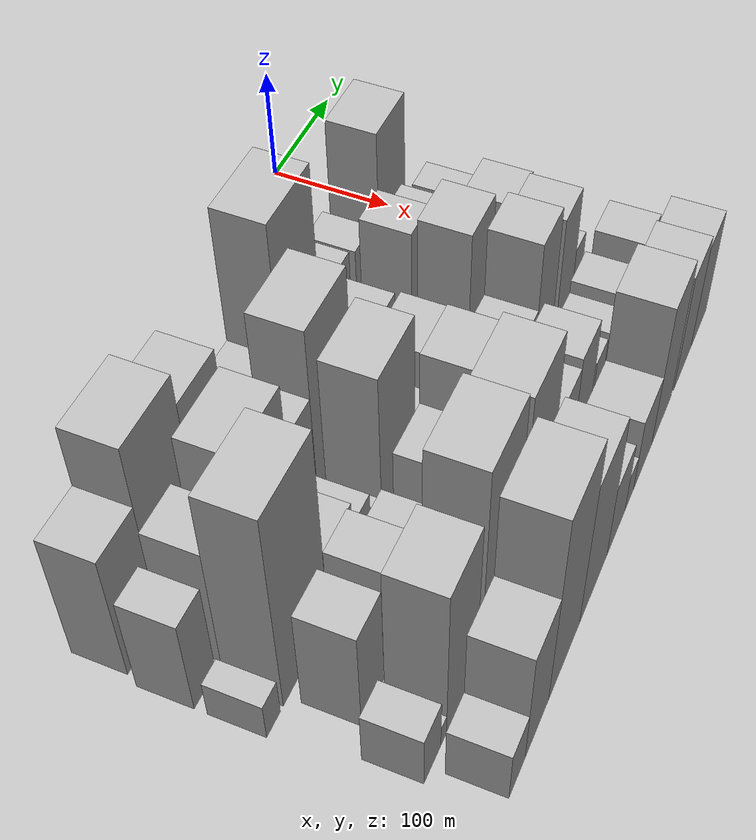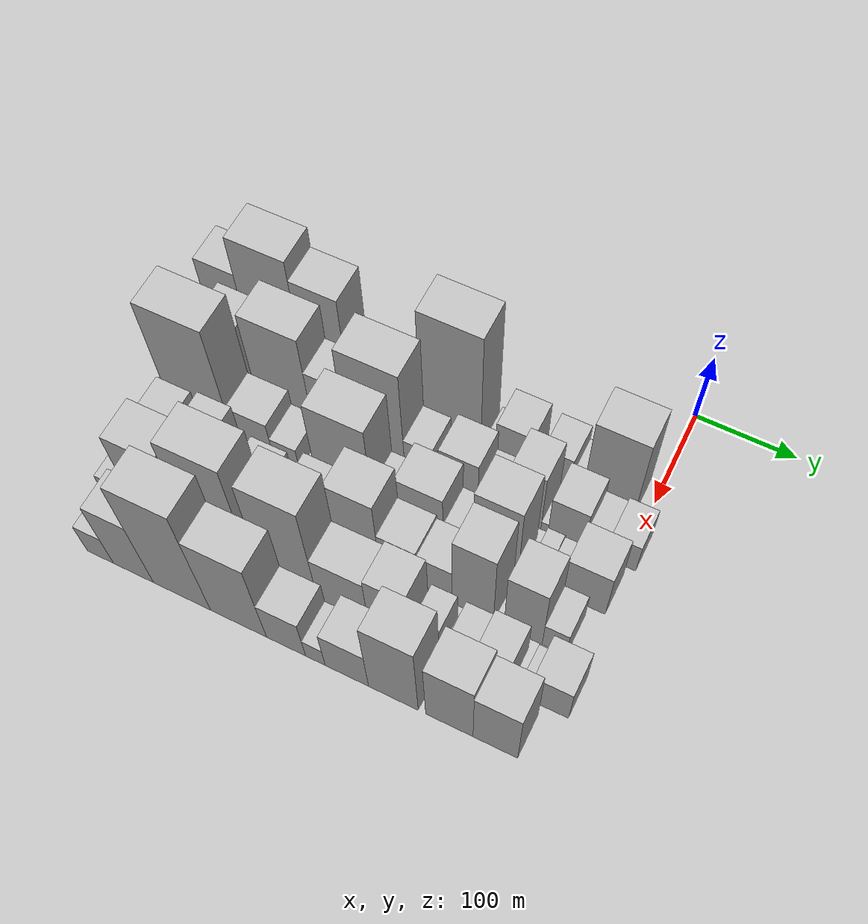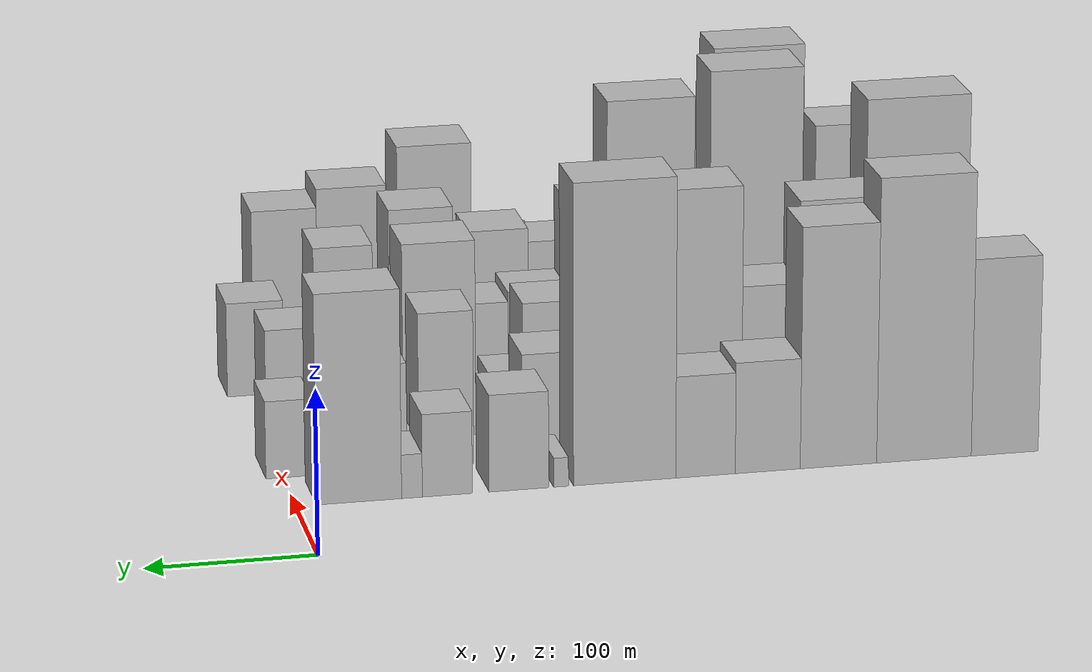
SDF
<sdf version="1.6">
 <world name="default">
  <model name="building_13">
   <static>1</static>
   <pose>100.0000 -427.4306 0 0.000000 0.000000 0.000000</pose>
   <link name="link">
    <pose>0 0 61.50 0 0 0</pose>
    <collision name="collision"><geometry><box><size>40.0000 41.3613 123.0000</size></box></geometry></collision>
    <visual name="visual">
     <cast_shadows>0</cast_shadows>
     <geometry><box><size>40.0000 41.3613 123.0000</size></box></geometry>
     <material>
      <script>
       <uri>model://HANNAS_wall/materials/scripts</uri>
       <uri>model://HANNAS_wall/materials/textures</uri>
       <name>vrc/HANNAS_wall</name>
      </script>
     </material>
    </visual>
   </link>
  </model>
  <model name="building_14">
   <static>1</static>
   <pose>100.0000 -377.6617 0 0.000000 0.000000 0.000000</pose>
   <link name="link">
    <pose>0 0 88.50 0 0 0</pose>
    <collision name="collision"><geometry><box><size>40.0000 58.1763 177.0000</size></box></geometry></collision>
    <visual name="visual">
     <cast_shadows>0</cast_shadows>
     <geometry><box><size>40.0000 58.1763 177.0000</size></box></geometry>
     <material>
      <script>
       <uri>model://HANNAS_wall/materials/scripts</uri>
       <uri>model://HANNAS_wall/materials/textures</uri>
       <name>vrc/HANNAS_wall</name>
      </script>
     </material>
    </visual>
   </link>
  </model>
  <model name="building_15">
   <static>1</static>
   <pose>100.0000 -325.2253 0 0.000000 0.000000 0.000000</pose>
   <link name="link">
    <pose>0 0 75.00 0 0 0</pose>
    <collision name="collision"><geometry><box><size>40.0000 46.6966 150.0000</size></box></geometry></collision>
    <visual name="visual">
     <cast_shadows>0</cast_shadows>
     <geometry><box><size>40.0000 46.6966 150.0000</size></box></geometry>
     <material>
      <script>
       <uri>model://HANNAS_wall/materials/scripts</uri>
       <uri>model://HANNAS_wall/materials/textures</uri>
       <name>vrc/HANNAS_wall</name>
      </script>
     </material>
    </visual>
   </link>
  </model>
  <model name="building_16">
   <static>1</static>
   <pose>100.0000 -282.1139 0 0.000000 0.000000 0.000000</pose>
   <link name="link">
    <pose>0 0 34.50 0 0 0</pose>
    <collision name="collision"><geometry><box><size>40.0000 39.5261 69.0000</size></box></geometry></collision>
    <visual name="visual">
     <cast_shadows>0</cast_shadows>
     <geometry><box><size>40.0000 39.5261 69.0000</size></box></geometry>
     <material>
      <script>
       <uri>model://HANNAS_wall/materials/scripts</uri>
       <uri>model://HANNAS_wall/materials/textures</uri>
       <name>vrc/HANNAS_wall</name>
      </script>
     </material>
    </visual>
   </link>
  </model>
  <model name="building_17">
   <static>1</static>
   <pose>100.0000 -244.3555 0 0.000000 0.000000 0.000000</pose>
   <link name="link">
    <pose>0 0 31.50 0 0 0</pose>
    <collision name="collision"><geometry><box><size>40.0000 35.9908 63.0000</size></box></geometry></collision>
    <visual name="visual">
     <cast_shadows>0</cast_shadows>
     <geometry><box><size>40.0000 35.9908 63.0000</size></box></geometry>
     <material>
      <script>
       <uri>model://HANNAS_wall/materials/scripts</uri>
       <uri>model://HANNAS_wall/materials/textures</uri>
       <name>vrc/HANNAS_wall</name>
      </script>
     </material>
    </visual>
   </link>
  </model>
  <model name="building_18">
   <static>1</static>
   <pose>100.0000 -195.5753 0 0.000000 0.000000 0.000000</pose>
   <link name="link">
    <pose>0 0 93.00 0 0 0</pose>
    <collision name="collision"><geometry><box><size>40.0000 61.5694 186.0000</size></box></geometry></collision>
    <visual name="visual">
     <cast_shadows>0</cast_shadows>
     <geometry><box><size>40.0000 61.5694 186.0000</size></box></geometry>
     <material>
      <script>
       <uri>model://HANNAS_wall/materials/scripts</uri>
       <uri>model://HANNAS_wall/materials/textures</uri>
       <name>vrc/HANNAS_wall</name>
      </script>
     </material>
    </visual>
   </link>
  </model>
  <model name="building_19">
   <static>1</static>
   <pose>100.0000 -157.3529 0 0.000000 0.000000 0.000000</pose>
   <link name="link">
    <pose>0 0 9.00 0 0 0</pose>
    <collision name="collision"><geometry><box><size>40.0000 8.8755 18.0000</size></box></geometry></collision>
    <visual name="visual">
     <cast_shadows>0</cast_shadows>
     <geometry><box><size>40.0000 8.8755 18.0000</size></box></geometry>
     <material>
      <script>
       <uri>model://HANNAS_wall/materials/scripts</uri>
       <uri>model://HANNAS_wall/materials/textures</uri>
       <name>vrc/HANNAS_wall</name>
      </script>
     </material>
    </visual>
   </link>
  </model>
  <model name="building_20">
   <static>1</static>
   <pose>100.0000 -132.1527 0 0.000000 0.000000 0.000000</pose>
   <link name="link">
    <pose>0 0 30.00 0 0 0</pose>
    <collision name="collision"><geometry><box><size>40.0000 35.5249 60.0000</size></box></geometry></collision>
    <visual name="visual">
     <cast_shadows>0</cast_shadows>
     <geometry><box><size>40.0000 35.5249 60.0000</size></box></geometry>
     <material>
      <script>
       <uri>model://HANNAS_wall/materials/scripts</uri>
       <uri>model://HANNAS_wall/materials/textures</uri>
       <name>vrc/HANNAS_wall</name>
      </script>
     </material>
    </visual>
   </link>
  </model>
  <model name="building_21">
   <static>1</static>
   <pose>100.0000 -89.5267 0 0.000000 0.000000 0.000000</pose>
   <link name="link">
    <pose>0 0 25.50 0 0 0</pose>
    <collision name="collision"><geometry><box><size>40.0000 29.7271 51.0000</size></box></geometry></collision>
    <visual name="visual">
     <cast_shadows>0</cast_shadows>
     <geometry><box><size>40.0000 29.7271 51.0000</size></box></geometry>
     <material>
      <script>
       <uri>model://HANNAS_wall/materials/scripts</uri>
       <uri>model://HANNAS_wall/materials/textures</uri>
       <name>vrc/HANNAS_wall</name>
      </script>
     </material>
    </visual>
   </link>
  </model>
  <model name="building_22">
   <static>1</static>
   <pose>100.0000 -68.5226 0 0.000000 0.000000 0.000000</pose>
   <link name="link">
    <pose>0 0 13.50 0 0 0</pose>
    <collision name="collision"><geometry><box><size>40.0000 12.2811 27.0000</size></box></geometry></collision>
    <visual name="visual">
     <cast_shadows>0</cast_shadows>
     <geometry><box><size>40.0000 12.2811 27.0000</size></box></geometry>
     <material>
      <script>
       <uri>model://HANNAS_wall/materials/scripts</uri>
       <uri>model://HANNAS_wall/materials/textures</uri>
       <name>vrc/HANNAS_wall</name>
      </script>
     </material>
    </visual>
   </link>
  </model>
  <model name="building_23">
   <static>1</static>
   <pose>100.0000 -37.1999 0 0.000000 0.000000 0.000000</pose>
   <link name="link">
    <pose>0 0 64.50 0 0 0</pose>
    <collision name="collision"><geometry><box><size>40.0000 50.3643 129.0000</size></box></geometry></collision>
    <visual name="visual">
     <cast_shadows>0</cast_shadows>
     <geometry><box><size>40.0000 50.3643 129.0000</size></box></geometry>
     <material>
      <script>
       <uri>model://HANNAS_wall/materials/scripts</uri>
       <uri>model://HANNAS_wall/materials/textures</uri>
       <name>vrc/HANNAS_wall</name>
      </script>
     </material>
    </visual>
   </link>
  </model>
  <model name="building_62">
   <static>1</static>
   <pose>149.0000 -438.9851 0 0.000000 0.000000 0.000000</pose>
   <link name="link">
    <pose>0 0 46.50 0 0 0</pose>
    <collision name="collision"><geometry><box><size>40.0000 28.0538 93.0000</size></box></geometry></collision>
    <visual name="visual">
     <cast_shadows>0</cast_shadows>
     <geometry><box><size>40.0000 28.0538 93.0000</size></box></geometry>
     <material>
      <script>
       <uri>model://HANNAS_wall/materials/scripts</uri>
       <uri>model://HANNAS_wall/materials/textures</uri>
       <name>vrc/HANNAS_wall</name>
      </script>
     </material>
    </visual>
   </link>
  </model>
  <model name="building_63">
   <static>1</static>
   <pose>149.0000 -398.9641 0 0.000000 0.000000 0.000000</pose>
   <link name="link">
    <pose>0 0 58.50 0 0 0</pose>
    <collision name="collision"><geometry><box><size>40.0000 37.9882 117.0000</size></box></geometry></collision>
    <visual name="visual">
     <cast_shadows>0</cast_shadows>
     <geometry><box><size>40.0000 37.9882 117.0000</size></box></geometry>
     <material>
      <script>
       <uri>model://HANNAS_wall/materials/scripts</uri>
       <uri>model://HANNAS_wall/materials/textures</uri>
       <name>vrc/HANNAS_wall</name>
      </script>
     </material>
    </visual>
   </link>
  </model>
  <model name="building_64">
   <static>1</static>
   <pose>149.0000 -341.8374 0 0.000000 0.000000 0.000000</pose>
   <link name="link">
    <pose>0 0 75.00 0 0 0</pose>
    <collision name="collision"><geometry><box><size>40.0000 58.2653 150.0000</size></box></geometry></collision>
    <visual name="visual">
     <cast_shadows>0</cast_shadows>
     <geometry><box><size>40.0000 58.2653 150.0000</size></box></geometry>
     <material>
      <script>
       <uri>model://HANNAS_wall/materials/scripts</uri>
       <uri>model://HANNAS_wall/materials/textures</uri>
       <name>vrc/HANNAS_wall</name>
      </script>
     </material>
    </visual>
   </link>
  </model>
  <model name="building_65">
   <static>1</static>
   <pose>149.0000 -295.3046 0 0.000000 0.000000 0.000000</pose>
   <link name="link">
    <pose>0 0 49.50 0 0 0</pose>
    <collision name="collision"><geometry><box><size>40.0000 34.8002 99.0000</size></box></geometry></collision>
    <visual name="visual">
     <cast_shadows>0</cast_shadows>
     <geometry><box><size>40.0000 34.8002 99.0000</size></box></geometry>
     <material>
      <script>
       <uri>model://HANNAS_wall/materials/scripts</uri>
       <uri>model://HANNAS_wall/materials/textures</uri>
       <name>vrc/HANNAS_wall</name>
      </script>
     </material>
    </visual>
   </link>
  </model>
  <model name="building_66">
   <static>1</static>
   <pose>149.0000 -247.8625 0 0.000000 0.000000 0.000000</pose>
   <link name="link">
    <pose>0 0 81.00 0 0 0</pose>
    <collision name="collision"><geometry><box><size>40.0000 60.0841 162.0000</size></box></geometry></collision>
    <visual name="visual">
     <cast_shadows>0</cast_shadows>
     <geometry><box><size>40.0000 60.0841 162.0000</size></box></geometry>
     <material>
      <script>
       <uri>model://HANNAS_wall/materials/scripts</uri>
       <uri>model://HANNAS_wall/materials/textures</uri>
       <name>vrc/HANNAS_wall</name>
      </script>
     </material>
    </visual>
   </link>
  </model>
  <model name="building_67">
   <static>1</static>
   <pose>149.0000 -203.9752 0 0.000000 0.000000 0.000000</pose>
   <link name="link">
    <pose>0 0 27.00 0 0 0</pose>
    <collision name="collision"><geometry><box><size>40.0000 27.6906 54.0000</size></box></geometry></collision>
    <visual name="visual">
     <cast_shadows>0</cast_shadows>
     <geometry><box><size>40.0000 27.6906 54.0000</size></box></geometry>
     <material>
      <script>
       <uri>model://HANNAS_wall/materials/scripts</uri>
       <uri>model://HANNAS_wall/materials/textures</uri>
       <name>vrc/HANNAS_wall</name>
      </script>
     </material>
    </visual>
   </link>
  </model>
  <model name="building_68">
   <static>1</static>
   <pose>149.0000 -163.5747 0 0.000000 0.000000 0.000000</pose>
   <link name="link">
    <pose>0 0 33.00 0 0 0</pose>
    <collision name="collision"><geometry><box><size>40.0000 39.1105 66.0000</size></box></geometry></collision>
    <visual name="visual">
     <cast_shadows>0</cast_shadows>
     <geometry><box><size>40.0000 39.1105 66.0000</size></box></geometry>
     <material>
      <script>
       <uri>model://HANNAS_wall/materials/scripts</uri>
       <uri>model://HANNAS_wall/materials/textures</uri>
       <name>vrc/HANNAS_wall</name>
      </script>
     </material>
    </visual>
   </link>
  </model>
  <model name="building_69">
   <static>1</static>
   <pose>149.0000 -134.3335 0 0.000000 0.000000 0.000000</pose>
   <link name="link">
    <pose>0 0 16.50 0 0 0</pose>
    <collision name="collision"><geometry><box><size>40.0000 19.3720 33.0000</size></box></geometry></collision>
    <visual name="visual">
     <cast_shadows>0</cast_shadows>
     <geometry><box><size>40.0000 19.3720 33.0000</size></box></geometry>
     <material>
      <script>
       <uri>model://HANNAS_wall/materials/scripts</uri>
       <uri>model://HANNAS_wall/materials/textures</uri>
       <name>vrc/HANNAS_wall</name>
      </script>
     </material>
    </visual>
   </link>
  </model>
  <model name="building_70">
   <static>1</static>
   <pose>149.0000 -98.1172 0 0.000000 0.000000 0.000000</pose>
   <link name="link">
    <pose>0 0 48.00 0 0 0</pose>
    <collision name="collision"><geometry><box><size>40.0000 33.0605 96.0000</size></box></geometry></collision>
    <visual name="visual">
     <cast_shadows>0</cast_shadows>
     <geometry><box><size>40.0000 33.0605 96.0000</size></box></geometry>
     <material>
      <script>
       <uri>model://HANNAS_wall/materials/scripts</uri>
       <uri>model://HANNAS_wall/materials/textures</uri>
       <name>vrc/HANNAS_wall</name>
      </script>
     </material>
    </visual>
   </link>
  </model>
  <model name="building_71">
   <static>1</static>
   <pose>149.0000 -78.0625 0 0.000000 0.000000 0.000000</pose>
   <link name="link">
    <pose>0 0 7.50 0 0 0</pose>
    <collision name="collision"><geometry><box><size>40.0000 7.0490 15.0000</size></box></geometry></collision>
    <visual name="visual">
     <cast_shadows>0</cast_shadows>
     <geometry><box><size>40.0000 7.0490 15.0000</size></box></geometry>
     <material>
      <script>
       <uri>model://HANNAS_wall/materials/scripts</uri>
       <uri>model://HANNAS_wall/materials/textures</uri>
       <name>vrc/HANNAS_wall</name>
      </script>
     </material>
    </visual>
   </link>
  </model>
  <model name="building_72">
   <static>1</static>
   <pose>149.0000 -56.8983 0 0.000000 0.000000 0.000000</pose>
   <link name="link">
    <pose>0 0 33.00 0 0 0</pose>
    <collision name="collision"><geometry><box><size>40.0000 35.2795 66.0000</size></box></geometry></collision>
    <visual name="visual">
     <cast_shadows>0</cast_shadows>
     <geometry><box><size>40.0000 35.2795 66.0000</size></box></geometry>
     <material>
      <script>
       <uri>model://HANNAS_wall/materials/scripts</uri>
       <uri>model://HANNAS_wall/materials/textures</uri>
       <name>vrc/HANNAS_wall</name>
      </script>
     </material>
    </visual>
   </link>
  </model>
  <model name="building_73">
   <static>1</static>
   <pose>149.0000 -28.7446 0 0.000000 0.000000 0.000000</pose>
   <link name="link">
    <pose>0 0 21.00 0 0 0</pose>
    <collision name="collision"><geometry><box><size>40.0000 21.0278 42.0000</size></box></geometry></collision>
    <visual name="visual">
     <cast_shadows>0</cast_shadows>
     <geometry><box><size>40.0000 21.0278 42.0000</size></box></geometry>
     <material>
      <script>
       <uri>model://HANNAS_wall/materials/scripts</uri>
       <uri>model://HANNAS_wall/materials/textures</uri>
       <name>vrc/HANNAS_wall</name>
      </script>
     </material>
    </visual>
   </link>
  </model>
  <model name="building_74">
   <static>1</static>
   <pose>149.0000 -4.1465 0 0.000000 0.000000 0.000000</pose>
   <link name="link">
    <pose>0 0 24.00 0 0 0</pose>
    <collision name="collision"><geometry><box><size>40.0000 28.1684 48.0000</size></box></geometry></collision>
    <visual name="visual">
     <cast_shadows>0</cast_shadows>
     <geometry><box><size>40.0000 28.1684 48.0000</size></box></geometry>
     <material>
      <script>
       <uri>model://HANNAS_wall/materials/scripts</uri>
       <uri>model://HANNAS_wall/materials/textures</uri>
       <name>vrc/HANNAS_wall</name>
      </script>
     </material>
    </visual>
   </link>
  </model>
  <model name="building_108">
   <static>1</static>
   <pose>198.0000 -443.6836 0 0.000000 0.000000 0.000000</pose>
   <link name="link">
    <pose>0 0 18.00 0 0 0</pose>
    <collision name="collision"><geometry><box><size>40.0000 18.5985 36.0000</size></box></geometry></collision>
    <visual name="visual">
     <cast_shadows>0</cast_shadows>
     <geometry><box><size>40.0000 18.5985 36.0000</size></box></geometry>
     <material>
      <script>
       <uri>model://HANNAS_wall/materials/scripts</uri>
       <uri>model://HANNAS_wall/materials/textures</uri>
       <name>vrc/HANNAS_wall</name>
      </script>
     </material>
    </visual>
   </link>
  </model>
  <model name="building_109">
   <static>1</static>
   <pose>198.0000 -398.2419 0 0.000000 0.000000 0.000000</pose>
   <link name="link">
    <pose>0 0 97.50 0 0 0</pose>
    <collision name="collision"><geometry><box><size>40.0000 64.2850 195.0000</size></box></geometry></collision>
    <visual name="visual">
     <cast_shadows>0</cast_shadows>
     <geometry><box><size>40.0000 64.2850 195.0000</size></box></geometry>
     <material>
      <script>
       <uri>model://HANNAS_wall/materials/scripts</uri>
       <uri>model://HANNAS_wall/materials/textures</uri>
       <name>vrc/HANNAS_wall</name>
      </script>
     </material>
    </visual>
   </link>
  </model>
  <model name="building_110">
   <static>1</static>
   <pose>198.0000 -345.6765 0 0.000000 0.000000 0.000000</pose>
   <link name="link">
    <pose>0 0 37.50 0 0 0</pose>
    <collision name="collision"><geometry><box><size>40.0000 40.8457 75.0000</size></box></geometry></collision>
    <visual name="visual">
     <cast_shadows>0</cast_shadows>
     <geometry><box><size>40.0000 40.8457 75.0000</size></box></geometry>
     <material>
      <script>
       <uri>model://HANNAS_wall/materials/scripts</uri>
       <uri>model://HANNAS_wall/materials/textures</uri>
       <name>vrc/HANNAS_wall</name>
      </script>
     </material>
    </visual>
   </link>
  </model>
  <model name="building_111">
   <static>1</static>
   <pose>198.0000 -312.0184 0 0.000000 0.000000 0.000000</pose>
   <link name="link">
    <pose>0 0 25.50 0 0 0</pose>
    <collision name="collision"><geometry><box><size>40.0000 26.4703 51.0000</size></box></geometry></collision>
    <visual name="visual">
     <cast_shadows>0</cast_shadows>
     <geometry><box><size>40.0000 26.4703 51.0000</size></box></geometry>
     <material>
      <script>
       <uri>model://HANNAS_wall/materials/scripts</uri>
       <uri>model://HANNAS_wall/materials/textures</uri>
       <name>vrc/HANNAS_wall</name>
      </script>
     </material>
    </visual>
   </link>
  </model>
  <model name="building_112">
   <static>1</static>
   <pose>198.0000 -295.0515 0 0.000000 0.000000 0.000000</pose>
   <link name="link">
    <pose>0 0 7.50 0 0 0</pose>
    <collision name="collision"><geometry><box><size>40.0000 7.4636 15.0000</size></box></geometry></collision>
    <visual name="visual">
     <cast_shadows>0</cast_shadows>
     <geometry><box><size>40.0000 7.4636 15.0000</size></box></geometry>
     <material>
      <script>
       <uri>model://HANNAS_wall/materials/scripts</uri>
       <uri>model://HANNAS_wall/materials/textures</uri>
       <name>vrc/HANNAS_wall</name>
      </script>
     </material>
    </visual>
   </link>
  </model>
  <model name="building_113">
   <static>1</static>
   <pose>198.0000 -286.3636 0 0.000000 0.000000 0.000000</pose>
   <link name="link">
    <pose>0 0 12.00 0 0 0</pose>
    <collision name="collision"><geometry><box><size>40.0000 9.9121 24.0000</size></box></geometry></collision>
    <visual name="visual">
     <cast_shadows>0</cast_shadows>
     <geometry><box><size>40.0000 9.9121 24.0000</size></box></geometry>
     <material>
      <script>
       <uri>model://HANNAS_wall/materials/scripts</uri>
       <uri>model://HANNAS_wall/materials/textures</uri>
       <name>vrc/HANNAS_wall</name>
      </script>
     </material>
    </visual>
   </link>
  </model>
  <model name="building_114">
   <static>1</static>
   <pose>198.0000 -252.9938 0 0.000000 0.000000 0.000000</pose>
   <link name="link">
    <pose>0 0 72.00 0 0 0</pose>
    <collision name="collision"><geometry><box><size>40.0000 56.8274 144.0000</size></box></geometry></collision>
    <visual name="visual">
     <cast_shadows>0</cast_shadows>
     <geometry><box><size>40.0000 56.8274 144.0000</size></box></geometry>
     <material>
      <script>
       <uri>model://HANNAS_wall/materials/scripts</uri>
       <uri>model://HANNAS_wall/materials/textures</uri>
       <name>vrc/HANNAS_wall</name>
      </script>
     </material>
    </visual>
   </link>
  </model>
  <model name="building_115">
   <static>1</static>
   <pose>198.0000 -212.6609 0 0.000000 0.000000 0.000000</pose>
   <link name="link">
    <pose>0 0 22.50 0 0 0</pose>
    <collision name="collision"><geometry><box><size>40.0000 23.8385 45.0000</size></box></geometry></collision>
    <visual name="visual">
     <cast_shadows>0</cast_shadows>
     <geometry><box><size>40.0000 23.8385 45.0000</size></box></geometry>
     <material>
      <script>
       <uri>model://HANNAS_wall/materials/scripts</uri>
       <uri>model://HANNAS_wall/materials/textures</uri>
       <name>vrc/HANNAS_wall</name>
      </script>
     </material>
    </visual>
   </link>
  </model>
  <model name="building_116">
   <static>1</static>
   <pose>198.0000 -177.5219 0 0.000000 0.000000 0.000000</pose>
   <link name="link">
    <pose>0 0 40.50 0 0 0</pose>
    <collision name="collision"><geometry><box><size>40.0000 46.4395 81.0000</size></box></geometry></collision>
    <visual name="visual">
     <cast_shadows>0</cast_shadows>
     <geometry><box><size>40.0000 46.4395 81.0000</size></box></geometry>
     <material>
      <script>
       <uri>model://HANNAS_wall/materials/scripts</uri>
       <uri>model://HANNAS_wall/materials/textures</uri>
       <name>vrc/HANNAS_wall</name>
      </script>
     </material>
    </visual>
   </link>
  </model>
  <model name="building_117">
   <static>1</static>
   <pose>198.0000 -144.3898 0 0.000000 0.000000 0.000000</pose>
   <link name="link">
    <pose>0 0 18.00 0 0 0</pose>
    <collision name="collision"><geometry><box><size>40.0000 19.8248 36.0000</size></box></geometry></collision>
    <visual name="visual">
     <cast_shadows>0</cast_shadows>
     <geometry><box><size>40.0000 19.8248 36.0000</size></box></geometry>
     <material>
      <script>
       <uri>model://HANNAS_wall/materials/scripts</uri>
       <uri>model://HANNAS_wall/materials/textures</uri>
       <name>vrc/HANNAS_wall</name>
      </script>
     </material>
    </visual>
   </link>
  </model>
  <model name="building_118">
   <static>1</static>
   <pose>198.0000 -103.3089 0 0.000000 0.000000 0.000000</pose>
   <link name="link">
    <pose>0 0 61.50 0 0 0</pose>
    <collision name="collision"><geometry><box><size>40.0000 44.3372 123.0000</size></box></geometry></collision>
    <visual name="visual">
     <cast_shadows>0</cast_shadows>
     <geometry><box><size>40.0000 44.3372 123.0000</size></box></geometry>
     <material>
      <script>
       <uri>model://HANNAS_wall/materials/scripts</uri>
       <uri>model://HANNAS_wall/materials/textures</uri>
       <name>vrc/HANNAS_wall</name>
      </script>
     </material>
    </visual>
   </link>
  </model>
  <model name="building_119">
   <static>1</static>
   <pose>198.0000 -63.8721 0 0.000000 0.000000 0.000000</pose>
   <link name="link">
    <pose>0 0 15.00 0 0 0</pose>
    <collision name="collision"><geometry><box><size>40.0000 16.5363 30.0000</size></box></geometry></collision>
    <visual name="visual">
     <cast_shadows>0</cast_shadows>
     <geometry><box><size>40.0000 16.5363 30.0000</size></box></geometry>
     <material>
      <script>
       <uri>model://HANNAS_wall/materials/scripts</uri>
       <uri>model://HANNAS_wall/materials/textures</uri>
       <name>vrc/HANNAS_wall</name>
      </script>
     </material>
    </visual>
   </link>
  </model>
  <model name="building_120">
   <static>1</static>
   <pose>198.0000 -49.3728 0 0.000000 0.000000 0.000000</pose>
   <link name="link">
    <pose>0 0 13.50 0 0 0</pose>
    <collision name="collision"><geometry><box><size>40.0000 12.4622 27.0000</size></box></geometry></collision>
    <visual name="visual">
     <cast_shadows>0</cast_shadows>
     <geometry><box><size>40.0000 12.4622 27.0000</size></box></geometry>
     <material>
      <script>
       <uri>model://HANNAS_wall/materials/scripts</uri>
       <uri>model://HANNAS_wall/materials/textures</uri>
       <name>vrc/HANNAS_wall</name>
      </script>
     </material>
    </visual>
   </link>
  </model>
  <model name="building_121">
   <static>1</static>
   <pose>198.0000 -18.6321 0 0.000000 0.000000 0.000000</pose>
   <link name="link">
    <pose>0 0 37.50 0 0 0</pose>
    <collision name="collision"><geometry><box><size>40.0000 41.0193 75.0000</size></box></geometry></collision>
    <visual name="visual">
     <cast_shadows>0</cast_shadows>
     <geometry><box><size>40.0000 41.0193 75.0000</size></box></geometry>
     <material>
      <script>
       <uri>model://HANNAS_wall/materials/scripts</uri>
       <uri>model://HANNAS_wall/materials/textures</uri>
       <name>vrc/HANNAS_wall</name>
      </script>
     </material>
    </visual>
   </link>
  </model>
  <model name="building_155">
   <static>1</static>
   <pose>247.0000 -406.9846 0 0.000000 0.000000 0.000000</pose>
   <link name="link">
    <pose>0 0 49.50 0 0 0</pose>
    <collision name="collision"><geometry><box><size>40.0000 34.1273 99.0000</size></box></geometry></collision>
    <visual name="visual">
     <cast_shadows>0</cast_shadows>
     <geometry><box><size>40.0000 34.1273 99.0000</size></box></geometry>
     <material>
      <script>
       <uri>model://HANNAS_wall/materials/scripts</uri>
       <uri>model://HANNAS_wall/materials/textures</uri>
       <name>vrc/HANNAS_wall</name>
      </script>
     </material>
    </visual>
   </link>
  </model>
  <model name="building_156">
   <static>1</static>
   <pose>247.0000 -365.2667 0 0.000000 0.000000 0.000000</pose>
   <link name="link">
    <pose>0 0 52.50 0 0 0</pose>
    <collision name="collision"><geometry><box><size>40.0000 33.3086 105.0000</size></box></geometry></collision>
    <visual name="visual">
     <cast_shadows>0</cast_shadows>
     <geometry><box><size>40.0000 33.3086 105.0000</size></box></geometry>
     <material>
      <script>
       <uri>model://HANNAS_wall/materials/scripts</uri>
       <uri>model://HANNAS_wall/materials/textures</uri>
       <name>vrc/HANNAS_wall</name>
      </script>
     </material>
    </visual>
   </link>
  </model>
  <model name="building_157">
   <static>1</static>
   <pose>247.0000 -342.4350 0 0.000000 0.000000 0.000000</pose>
   <link name="link">
    <pose>0 0 13.50 0 0 0</pose>
    <collision name="collision"><geometry><box><size>40.0000 12.3548 27.0000</size></box></geometry></collision>
    <visual name="visual">
     <cast_shadows>0</cast_shadows>
     <geometry><box><size>40.0000 12.3548 27.0000</size></box></geometry>
     <material>
      <script>
       <uri>model://HANNAS_wall/materials/scripts</uri>
       <uri>model://HANNAS_wall/materials/textures</uri>
       <name>vrc/HANNAS_wall</name>
      </script>
     </material>
    </visual>
   </link>
  </model>
  <model name="building_158">
   <static>1</static>
   <pose>247.0000 -318.2376 0 0.000000 0.000000 0.000000</pose>
   <link name="link">
    <pose>0 0 31.50 0 0 0</pose>
    <collision name="collision"><geometry><box><size>40.0000 36.0400 63.0000</size></box></geometry></collision>
    <visual name="visual">
     <cast_shadows>0</cast_shadows>
     <geometry><box><size>40.0000 36.0400 63.0000</size></box></geometry>
     <material>
      <script>
       <uri>model://HANNAS_wall/materials/scripts</uri>
       <uri>model://HANNAS_wall/materials/textures</uri>
       <name>vrc/HANNAS_wall</name>
      </script>
     </material>
    </visual>
   </link>
  </model>
  <model name="building_159">
   <static>1</static>
   <pose>247.0000 -287.1024 0 0.000000 0.000000 0.000000</pose>
   <link name="link">
    <pose>0 0 12.00 0 0 0</pose>
    <collision name="collision"><geometry><box><size>40.0000 10.2304 24.0000</size></box></geometry></collision>
    <visual name="visual">
     <cast_shadows>0</cast_shadows>
     <geometry><box><size>40.0000 10.2304 24.0000</size></box></geometry>
     <material>
      <script>
       <uri>model://HANNAS_wall/materials/scripts</uri>
       <uri>model://HANNAS_wall/materials/textures</uri>
       <name>vrc/HANNAS_wall</name>
      </script>
     </material>
    </visual>
   </link>
  </model>
  <model name="building_160">
   <static>1</static>
   <pose>247.0000 -259.9689 0 0.000000 0.000000 0.000000</pose>
   <link name="link">
    <pose>0 0 39.00 0 0 0</pose>
    <collision name="collision"><geometry><box><size>40.0000 44.0365 78.0000</size></box></geometry></collision>
    <visual name="visual">
     <cast_shadows>0</cast_shadows>
     <geometry><box><size>40.0000 44.0365 78.0000</size></box></geometry>
     <material>
      <script>
       <uri>model://HANNAS_wall/materials/scripts</uri>
       <uri>model://HANNAS_wall/materials/textures</uri>
       <name>vrc/HANNAS_wall</name>
      </script>
     </material>
    </visual>
   </link>
  </model>
  <model name="building_161">
   <static>1</static>
   <pose>247.0000 -215.0551 0 0.000000 0.000000 0.000000</pose>
   <link name="link">
    <pose>0 0 63.00 0 0 0</pose>
    <collision name="collision"><geometry><box><size>40.0000 45.7913 126.0000</size></box></geometry></collision>
    <visual name="visual">
     <cast_shadows>0</cast_shadows>
     <geometry><box><size>40.0000 45.7913 126.0000</size></box></geometry>
     <material>
      <script>
       <uri>model://HANNAS_wall/materials/scripts</uri>
       <uri>model://HANNAS_wall/materials/textures</uri>
       <name>vrc/HANNAS_wall</name>
      </script>
     </material>
    </visual>
   </link>
  </model>
  <model name="building_162">
   <static>1</static>
   <pose>247.0000 -173.6595 0 0.000000 0.000000 0.000000</pose>
   <link name="link">
    <pose>0 0 36.00 0 0 0</pose>
    <collision name="collision"><geometry><box><size>40.0000 36.9997 72.0000</size></box></geometry></collision>
    <visual name="visual">
     <cast_shadows>0</cast_shadows>
     <geometry><box><size>40.0000 36.9997 72.0000</size></box></geometry>
     <material>
      <script>
       <uri>model://HANNAS_wall/materials/scripts</uri>
       <uri>model://HANNAS_wall/materials/textures</uri>
       <name>vrc/HANNAS_wall</name>
      </script>
     </material>
    </visual>
   </link>
  </model>
  <model name="building_163">
   <static>1</static>
   <pose>247.0000 -138.2125 0 0.000000 0.000000 0.000000</pose>
   <link name="link">
    <pose>0 0 33.00 0 0 0</pose>
    <collision name="collision"><geometry><box><size>40.0000 33.8942 66.0000</size></box></geometry></collision>
    <visual name="visual">
     <cast_shadows>0</cast_shadows>
     <geometry><box><size>40.0000 33.8942 66.0000</size></box></geometry>
     <material>
      <script>
       <uri>model://HANNAS_wall/materials/scripts</uri>
       <uri>model://HANNAS_wall/materials/textures</uri>
       <name>vrc/HANNAS_wall</name>
      </script>
     </material>
    </visual>
   </link>
  </model>
  <model name="building_164">
   <static>1</static>
   <pose>247.0000 -101.5789 0 0.000000 0.000000 0.000000</pose>
   <link name="link">
    <pose>0 0 64.50 0 0 0</pose>
    <collision name="collision"><geometry><box><size>40.0000 39.3730 129.0000</size></box></geometry></collision>
    <visual name="visual">
     <cast_shadows>0</cast_shadows>
     <geometry><box><size>40.0000 39.3730 129.0000</size></box></geometry>
     <material>
      <script>
       <uri>model://HANNAS_wall/materials/scripts</uri>
       <uri>model://HANNAS_wall/materials/textures</uri>
       <name>vrc/HANNAS_wall</name>
      </script>
     </material>
    </visual>
   </link>
  </model>
  <model name="building_165">
   <static>1</static>
   <pose>247.0000 -53.8184 0 0.000000 0.000000 0.000000</pose>
   <link name="link">
    <pose>0 0 54.00 0 0 0</pose>
    <collision name="collision"><geometry><box><size>40.0000 36.1479 108.0000</size></box></geometry></collision>
    <visual name="visual">
     <cast_shadows>0</cast_shadows>
     <geometry><box><size>40.0000 36.1479 108.0000</size></box></geometry>
     <material>
      <script>
       <uri>model://HANNAS_wall/materials/scripts</uri>
       <uri>model://HANNAS_wall/materials/textures</uri>
       <name>vrc/HANNAS_wall</name>
      </script>
     </material>
    </visual>
   </link>
  </model>
  <model name="building_166">
   <static>1</static>
   <pose>247.0000 -24.4421 0 0.000000 0.000000 0.000000</pose>
   <link name="link">
    <pose>0 0 22.50 0 0 0</pose>
    <collision name="collision"><geometry><box><size>40.0000 22.6046 45.0000</size></box></geometry></collision>
    <visual name="visual">
     <cast_shadows>0</cast_shadows>
     <geometry><box><size>40.0000 22.6046 45.0000</size></box></geometry>
     <material>
      <script>
       <uri>model://HANNAS_wall/materials/scripts</uri>
       <uri>model://HANNAS_wall/materials/textures</uri>
       <name>vrc/HANNAS_wall</name>
      </script>
     </material>
    </visual>
   </link>
  </model>
  <model name="building_202">
   <static>1</static>
   <pose>296.0000 -430.6671 0 0.000000 0.000000 0.000000</pose>
   <link name="link">
    <pose>0 0 25.50 0 0 0</pose>
    <collision name="collision"><geometry><box><size>40.0000 26.1970 51.0000</size></box></geometry></collision>
    <visual name="visual">
     <cast_shadows>0</cast_shadows>
     <geometry><box><size>40.0000 26.1970 51.0000</size></box></geometry>
     <material>
      <script>
       <uri>model://HANNAS_wall/materials/scripts</uri>
       <uri>model://HANNAS_wall/materials/textures</uri>
       <name>vrc/HANNAS_wall</name>
      </script>
     </material>
    </visual>
   </link>
  </model>
  <model name="building_203">
   <static>1</static>
   <pose>296.0000 -413.1598 0 0.000000 0.000000 0.000000</pose>
   <link name="link">
    <pose>0 0 10.50 0 0 0</pose>
    <collision name="collision"><geometry><box><size>40.0000 8.8175 21.0000</size></box></geometry></collision>
    <visual name="visual">
     <cast_shadows>0</cast_shadows>
     <geometry><box><size>40.0000 8.8175 21.0000</size></box></geometry>
     <material>
      <script>
       <uri>model://HANNAS_wall/materials/scripts</uri>
       <uri>model://HANNAS_wall/materials/textures</uri>
       <name>vrc/HANNAS_wall</name>
      </script>
     </material>
    </visual>
   </link>
  </model>
  <model name="building_204">
   <static>1</static>
   <pose>296.0000 -384.0446 0 0.000000 0.000000 0.000000</pose>
   <link name="link">
    <pose>0 0 75.00 0 0 0</pose>
    <collision name="collision"><geometry><box><size>40.0000 49.4130 150.0000</size></box></geometry></collision>
    <visual name="visual">
     <cast_shadows>0</cast_shadows>
     <geometry><box><size>40.0000 49.4130 150.0000</size></box></geometry>
     <material>
      <script>
       <uri>model://HANNAS_wall/materials/scripts</uri>
       <uri>model://HANNAS_wall/materials/textures</uri>
       <name>vrc/HANNAS_wall</name>
      </script>
     </material>
    </visual>
   </link>
  </model>
  <model name="building_205">
   <static>1</static>
   <pose>296.0000 -321.9478 0 0.000000 0.000000 0.000000</pose>
   <link name="link">
    <pose>0 0 94.50 0 0 0</pose>
    <collision name="collision"><geometry><box><size>40.0000 58.7805 189.0000</size></box></geometry></collision>
    <visual name="visual">
     <cast_shadows>0</cast_shadows>
     <geometry><box><size>40.0000 58.7805 189.0000</size></box></geometry>
     <material>
      <script>
       <uri>model://HANNAS_wall/materials/scripts</uri>
       <uri>model://HANNAS_wall/materials/textures</uri>
       <name>vrc/HANNAS_wall</name>
      </script>
     </material>
    </visual>
   </link>
  </model>
  <model name="building_206">
   <static>1</static>
   <pose>296.0000 -254.8748 0 0.000000 0.000000 0.000000</pose>
   <link name="link">
    <pose>0 0 87.00 0 0 0</pose>
    <collision name="collision"><geometry><box><size>40.0000 55.3655 174.0000</size></box></geometry></collision>
    <visual name="visual">
     <cast_shadows>0</cast_shadows>
     <geometry><box><size>40.0000 55.3655 174.0000</size></box></geometry>
     <material>
      <script>
       <uri>model://HANNAS_wall/materials/scripts</uri>
       <uri>model://HANNAS_wall/materials/textures</uri>
       <name>vrc/HANNAS_wall</name>
      </script>
     </material>
    </visual>
   </link>
  </model>
  <model name="building_207">
   <static>1</static>
   <pose>296.0000 -202.3090 0 0.000000 0.000000 0.000000</pose>
   <link name="link">
    <pose>0 0 43.50 0 0 0</pose>
    <collision name="collision"><geometry><box><size>40.0000 49.7663 87.0000</size></box></geometry></collision>
    <visual name="visual">
     <cast_shadows>0</cast_shadows>
     <geometry><box><size>40.0000 49.7663 87.0000</size></box></geometry>
     <material>
      <script>
       <uri>model://HANNAS_wall/materials/scripts</uri>
       <uri>model://HANNAS_wall/materials/textures</uri>
       <name>vrc/HANNAS_wall</name>
      </script>
     </material>
    </visual>
   </link>
  </model>
  <model name="building_208">
   <static>1</static>
   <pose>296.0000 -158.6654 0 0.000000 0.000000 0.000000</pose>
   <link name="link">
    <pose>0 0 48.00 0 0 0</pose>
    <collision name="collision"><geometry><box><size>40.0000 37.5209 96.0000</size></box></geometry></collision>
    <visual name="visual">
     <cast_shadows>0</cast_shadows>
     <geometry><box><size>40.0000 37.5209 96.0000</size></box></geometry>
     <material>
      <script>
       <uri>model://HANNAS_wall/materials/scripts</uri>
       <uri>model://HANNAS_wall/materials/textures</uri>
       <name>vrc/HANNAS_wall</name>
      </script>
     </material>
    </visual>
   </link>
  </model>
  <model name="building_209">
   <static>1</static>
   <pose>296.0000 -123.6885 0 0.000000 0.000000 0.000000</pose>
   <link name="link">
    <pose>0 0 24.00 0 0 0</pose>
    <collision name="collision"><geometry><box><size>40.0000 24.4328 48.0000</size></box></geometry></collision>
    <visual name="visual">
     <cast_shadows>0</cast_shadows>
     <geometry><box><size>40.0000 24.4328 48.0000</size></box></geometry>
     <material>
      <script>
       <uri>model://HANNAS_wall/materials/scripts</uri>
       <uri>model://HANNAS_wall/materials/textures</uri>
       <name>vrc/HANNAS_wall</name>
      </script>
     </material>
    </visual>
   </link>
  </model>
  <model name="building_210">
   <static>1</static>
   <pose>296.0000 -90.1692 0 0.000000 0.000000 0.000000</pose>
   <link name="link">
    <pose>0 0 22.50 0 0 0</pose>
    <collision name="collision"><geometry><box><size>40.0000 26.6058 45.0000</size></box></geometry></collision>
    <visual name="visual">
     <cast_shadows>0</cast_shadows>
     <geometry><box><size>40.0000 26.6058 45.0000</size></box></geometry>
     <material>
      <script>
       <uri>model://HANNAS_wall/materials/scripts</uri>
       <uri>model://HANNAS_wall/materials/textures</uri>
       <name>vrc/HANNAS_wall</name>
      </script>
     </material>
    </visual>
   </link>
  </model>
  <model name="building_211">
   <static>1</static>
   <pose>296.0000 -60.7212 0 0.000000 0.000000 0.000000</pose>
   <link name="link">
    <pose>0 0 28.50 0 0 0</pose>
    <collision name="collision"><geometry><box><size>40.0000 32.2902 57.0000</size></box></geometry></collision>
    <visual name="visual">
     <cast_shadows>0</cast_shadows>
     <geometry><box><size>40.0000 32.2902 57.0000</size></box></geometry>
     <material>
      <script>
       <uri>model://HANNAS_wall/materials/scripts</uri>
       <uri>model://HANNAS_wall/materials/textures</uri>
       <name>vrc/HANNAS_wall</name>
      </script>
     </material>
    </visual>
   </link>
  </model>
  <model name="building_212">
   <static>1</static>
   <pose>296.0000 -30.0052 0 0.000000 0.000000 0.000000</pose>
   <link name="link">
    <pose>0 0 12.00 0 0 0</pose>
    <collision name="collision"><geometry><box><size>40.0000 11.1420 24.0000</size></box></geometry></collision>
    <visual name="visual">
     <cast_shadows>0</cast_shadows>
     <geometry><box><size>40.0000 11.1420 24.0000</size></box></geometry>
     <material>
      <script>
       <uri>model://HANNAS_wall/materials/scripts</uri>
       <uri>model://HANNAS_wall/materials/textures</uri>
       <name>vrc/HANNAS_wall</name>
      </script>
     </material>
    </visual>
   </link>
  </model>
  <model name="building_213">
   <static>1</static>
   <pose>296.0000 -6.8735 0 0.000000 0.000000 0.000000</pose>
   <link name="link">
    <pose>0 0 30.00 0 0 0</pose>
    <collision name="collision"><geometry><box><size>40.0000 35.1214 60.0000</size></box></geometry></collision>
    <visual name="visual">
     <cast_shadows>0</cast_shadows>
     <geometry><box><size>40.0000 35.1214 60.0000</size></box></geometry>
     <material>
      <script>
       <uri>model://HANNAS_wall/materials/scripts</uri>
       <uri>model://HANNAS_wall/materials/textures</uri>
       <name>vrc/HANNAS_wall</name>
      </script>
     </material>
    </visual>
   </link>
  </model>
  <model name="building_246">
   <static>1</static>
   <pose>345.0000 -419.3429 0 0.000000 0.000000 0.000000</pose>
   <link name="link">
    <pose>0 0 25.50 0 0 0</pose>
    <collision name="collision"><geometry><box><size>40.0000 27.3920 51.0000</size></box></geometry></collision>
    <visual name="visual">
     <cast_shadows>0</cast_shadows>
     <geometry><box><size>40.0000 27.3920 51.0000</size></box></geometry>
     <material>
      <script>
       <uri>model://HANNAS_wall/materials/scripts</uri>
       <uri>model://HANNAS_wall/materials/textures</uri>
       <name>vrc/HANNAS_wall</name>
      </script>
     </material>
    </visual>
   </link>
  </model>
  <model name="building_247">
   <static>1</static>
   <pose>345.0000 -384.9222 0 0.000000 0.000000 0.000000</pose>
   <link name="link">
    <pose>0 0 57.00 0 0 0</pose>
    <collision name="collision"><geometry><box><size>40.0000 41.4495 114.0000</size></box></geometry></collision>
    <visual name="visual">
     <cast_shadows>0</cast_shadows>
     <geometry><box><size>40.0000 41.4495 114.0000</size></box></geometry>
     <material>
      <script>
       <uri>model://HANNAS_wall/materials/scripts</uri>
       <uri>model://HANNAS_wall/materials/textures</uri>
       <name>vrc/HANNAS_wall</name>
      </script>
     </material>
    </visual>
   </link>
  </model>
  <model name="building_248">
   <static>1</static>
   <pose>345.0000 -335.1858 0 0.000000 0.000000 0.000000</pose>
   <link name="link">
    <pose>0 0 94.50 0 0 0</pose>
    <collision name="collision"><geometry><box><size>40.0000 58.0234 189.0000</size></box></geometry></collision>
    <visual name="visual">
     <cast_shadows>0</cast_shadows>
     <geometry><box><size>40.0000 58.0234 189.0000</size></box></geometry>
     <material>
      <script>
       <uri>model://HANNAS_wall/materials/scripts</uri>
       <uri>model://HANNAS_wall/materials/textures</uri>
       <name>vrc/HANNAS_wall</name>
      </script>
     </material>
    </visual>
   </link>
  </model>
  <model name="building_249">
   <static>1</static>
   <pose>345.0000 -278.3053 0 0.000000 0.000000 0.000000</pose>
   <link name="link">
    <pose>0 0 72.00 0 0 0</pose>
    <collision name="collision"><geometry><box><size>40.0000 55.7377 144.0000</size></box></geometry></collision>
    <visual name="visual">
     <cast_shadows>0</cast_shadows>
     <geometry><box><size>40.0000 55.7377 144.0000</size></box></geometry>
     <material>
      <script>
       <uri>model://HANNAS_wall/materials/scripts</uri>
       <uri>model://HANNAS_wall/materials/textures</uri>
       <name>vrc/HANNAS_wall</name>
      </script>
     </material>
    </visual>
   </link>
  </model>
  <model name="building_250">
   <static>1</static>
   <pose>345.0000 -231.2244 0 0.000000 0.000000 0.000000</pose>
   <link name="link">
    <pose>0 0 36.00 0 0 0</pose>
    <collision name="collision"><geometry><box><size>40.0000 38.4241 72.0000</size></box></geometry></collision>
    <visual name="visual">
     <cast_shadows>0</cast_shadows>
     <geometry><box><size>40.0000 38.4241 72.0000</size></box></geometry>
     <material>
      <script>
       <uri>model://HANNAS_wall/materials/scripts</uri>
       <uri>model://HANNAS_wall/materials/textures</uri>
       <name>vrc/HANNAS_wall</name>
      </script>
     </material>
    </visual>
   </link>
  </model>
  <model name="building_251">
   <static>1</static>
   <pose>345.0000 -202.5502 0 0.000000 0.000000 0.000000</pose>
   <link name="link">
    <pose>0 0 18.00 0 0 0</pose>
    <collision name="collision"><geometry><box><size>40.0000 18.9243 36.0000</size></box></geometry></collision>
    <visual name="visual">
     <cast_shadows>0</cast_shadows>
     <geometry><box><size>40.0000 18.9243 36.0000</size></box></geometry>
     <material>
      <script>
       <uri>model://HANNAS_wall/materials/scripts</uri>
       <uri>model://HANNAS_wall/materials/textures</uri>
       <name>vrc/HANNAS_wall</name>
      </script>
     </material>
    </visual>
   </link>
  </model>
  <model name="building_252">
   <static>1</static>
   <pose>345.0000 -172.2851 0 0.000000 0.000000 0.000000</pose>
   <link name="link">
    <pose>0 0 36.00 0 0 0</pose>
    <collision name="collision"><geometry><box><size>40.0000 41.6059 72.0000</size></box></geometry></collision>
    <visual name="visual">
     <cast_shadows>0</cast_shadows>
     <geometry><box><size>40.0000 41.6059 72.0000</size></box></geometry>
     <material>
      <script>
       <uri>model://HANNAS_wall/materials/scripts</uri>
       <uri>model://HANNAS_wall/materials/textures</uri>
       <name>vrc/HANNAS_wall</name>
      </script>
     </material>
    </visual>
   </link>
  </model>
  <model name="building_253">
   <static>1</static>
   <pose>345.0000 -128.0617 0 0.000000 0.000000 0.000000</pose>
   <link name="link">
    <pose>0 0 69.00 0 0 0</pose>
    <collision name="collision"><geometry><box><size>40.0000 46.8409 138.0000</size></box></geometry></collision>
    <visual name="visual">
     <cast_shadows>0</cast_shadows>
     <geometry><box><size>40.0000 46.8409 138.0000</size></box></geometry>
     <material>
      <script>
       <uri>model://HANNAS_wall/materials/scripts</uri>
       <uri>model://HANNAS_wall/materials/textures</uri>
       <name>vrc/HANNAS_wall</name>
      </script>
     </material>
    </visual>
   </link>
  </model>
  <model name="building_254">
   <static>1</static>
   <pose>345.0000 -75.7799 0 0.000000 0.000000 0.000000</pose>
   <link name="link">
    <pose>0 0 57.00 0 0 0</pose>
    <collision name="collision"><geometry><box><size>40.0000 43.7226 114.0000</size></box></geometry></collision>
    <visual name="visual">
     <cast_shadows>0</cast_shadows>
     <geometry><box><size>40.0000 43.7226 114.0000</size></box></geometry>
     <material>
      <script>
       <uri>model://HANNAS_wall/materials/scripts</uri>
       <uri>model://HANNAS_wall/materials/textures</uri>
       <name>vrc/HANNAS_wall</name>
      </script>
     </material>
    </visual>
   </link>
  </model>
  <model name="building_255">
   <static>1</static>
   <pose>345.0000 -33.5199 0 0.000000 0.000000 0.000000</pose>
   <link name="link">
    <pose>0 0 51.00 0 0 0</pose>
    <collision name="collision"><geometry><box><size>40.0000 40.7973 102.0000</size></box></geometry></collision>
    <visual name="visual">
     <cast_shadows>0</cast_shadows>
     <geometry><box><size>40.0000 40.7973 102.0000</size></box></geometry>
     <material>
      <script>
       <uri>model://HANNAS_wall/materials/scripts</uri>
       <uri>model://HANNAS_wall/materials/textures</uri>
       <name>vrc/HANNAS_wall</name>
      </script>
     </material>
    </visual>
   </link>
  </model>
 </world>
</sdf>
